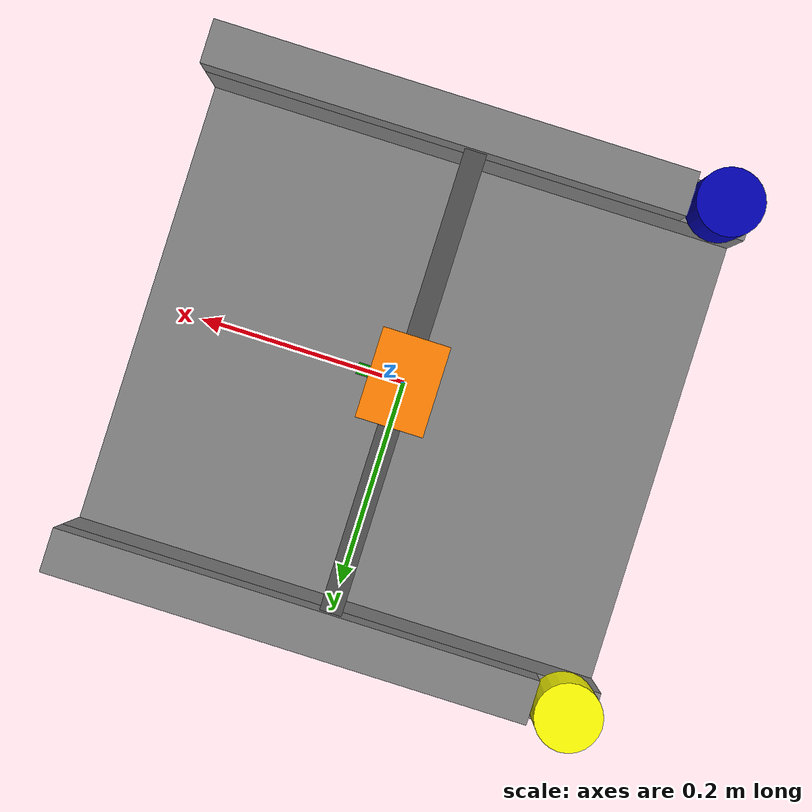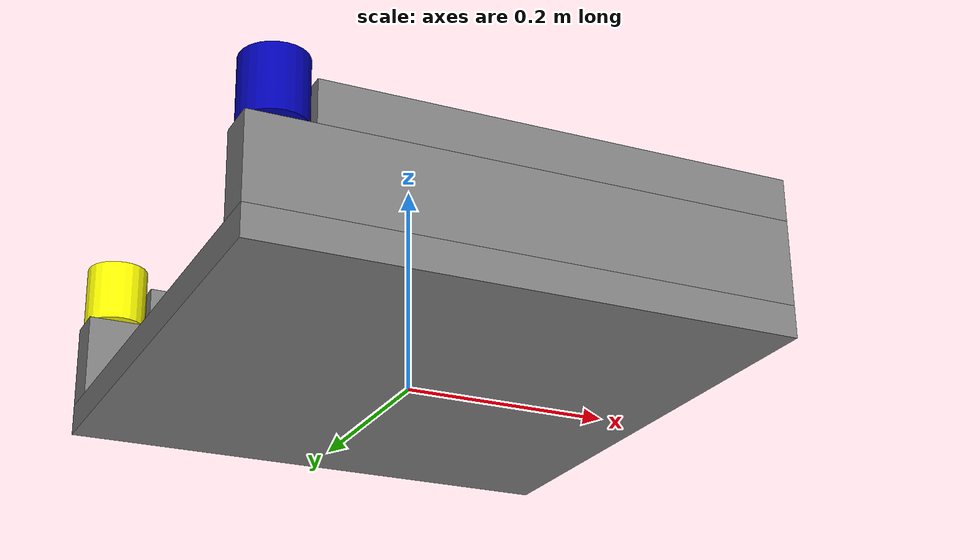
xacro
<?xml version="1.0"?>
<robot name="my_robot" xmlns:xacro="http://www.ros.org/wiki/xacro">

    <xacro:include filename="$(find robot_description)/urdf/properties.xacro"/>
    <xacro:include filename="$(find robot_description)/urdf/macro.xacro"/>

    <link name="base_link">
        <visual>
            <geometry>
                <box size="${base_width} ${base_length} ${base_height}" />
            </geometry>
            <origin xyz="0 0 ${base_height/2.0}" rpy="0 0 0" />
            <material name="grey" />
        </visual>
        <collision>
            <geometry>
                <box size="${base_width} ${base_length} ${base_height}" />
            </geometry>
            <origin xyz="0 0 ${base_height/2.0}" rpy="0 0 0" />
        </collision>
        <xacro:box_inertia m="5.0" w="${base_width}" l="${base_length}" h="${base_height}" xyz="0 0 ${base_height/2.0}" rpy="0 0 0"/>
    </link>

    <link name="motorA_link">
        <visual>
            <geometry>
                <cylinder radius="${motor_radius}" length="${motor_height}"/>
            </geometry>
            <origin xyz="0 0 ${motor_height/2.0}" rpy="0 0 0" />
            <material name="blue" />
        </visual>
        <collision>
            <geometry>
                <cylinder radius="${motor_radius}" length="${motor_height}"/>
            </geometry>
            <origin xyz="0 0 ${motor_height/2.0}" rpy="0 0 0" />
        </collision>
        <xacro:cylinder_inertia m="0.5" r="${motor_radius}" h="${motor_height}" xyz="0 0 ${motor_height/2.0}" rpy="0 0 0"/>
    </link>

    <link name="motorB_link">
        <visual>
            <geometry>
                <cylinder radius="${motor_radius}" length="${motor_height}"/>
            </geometry>
            <origin xyz="0 0 ${motor_height/2.0}" rpy="0 0 0" />
            <material name="yellow" />
        </visual>
        <collision>
            <geometry>
                <cylinder radius="${motor_radius}" length="${motor_height}"/>
            </geometry>
            <origin xyz="0 0 ${motor_height/2.0}" rpy="0 0 0" />
        </collision>
        <xacro:cylinder_inertia m="0.5" r="${motor_radius}" h="${motor_height}" xyz="0 0 ${motor_height/2.0}" rpy="0 0 0"/>
    </link>

    <link name="railA_link">
        <visual>
            <geometry>
                <box size="${base_length-2.0*motor_radius} ${rail_width} ${rail_length}" />
            </geometry>
            <origin xyz="${motor_radius} 0 ${rail_length/2.0}" rpy="0 0 0" />
            <material name="grey" />
        </visual>
        <collision>
            <geometry>
                <box size="${base_length-2.0*motor_radius} ${rail_width} ${rail_length}" />
            </geometry>
            <origin xyz="${motor_radius} 0 ${rail_length/2.0}" rpy="0 0 0" />
        </collision>
        <xacro:box_inertia m="0.5" w="${base_length-2.0*motor_radius}" l="${rail_width}" h="${rail_length}" xyz="${motor_radius} 0 ${rail_length/2.0}" rpy="0 0 0"/>
    </link>

     <link name="railA_supp_link">
        <visual>
            <geometry>
                <box size="${base_length} ${rail_width} ${rail_length*2.0}" />
            </geometry>
            <origin xyz="0 0 ${rail_length}" rpy="0 0 0" />
            <material name="grey" />
        </visual>
        <collision>
            <geometry>
                <box size="${base_length} ${rail_width} ${rail_length*2.0}" />
            </geometry>
            <origin xyz="0 0 ${rail_length}" rpy="0 0 0" />
        </collision>
        <xacro:box_inertia m="1.0" w="${base_length}" l="${rail_width}" h="${rail_length*2.0}" xyz="0 0 ${rail_length}" rpy="0 0 0"/>
    </link>

    <link name="railB_link">
        <visual>
            <geometry>
                <box size="${base_length-2.0*motor_radius} ${rail_width} ${rail_length}" />
            </geometry>
            <origin xyz="${motor_radius} 0 ${rail_length/2.0}" rpy="0 0 0" />
            <material name="grey" />
        </visual>
        <collision>
            <geometry>
                <box size="${base_length-2.0*motor_radius} ${rail_width} ${rail_length}" />
            </geometry>
            <origin xyz="${motor_radius} 0 ${rail_length/2.0}" rpy="0 0 0" />
        </collision>
        <xacro:box_inertia m="0.5" w="${base_length-2.0*motor_radius}" l="${rail_width}" h="${rail_length}" xyz="${motor_radius} 0 ${rail_length/2.0}" rpy="0 0 0"/>
    </link>

    <link name="railB_supp_link">
        <visual>
            <geometry>
                <box size="${base_length} ${rail_width} ${rail_length*2.0}" />
            </geometry>
            <origin xyz="0 0 ${rail_length}" rpy="0 0 0" />
            <material name="grey" />
        </visual>
        <collision>
            <geometry>
                <box size="${base_length} ${rail_width} ${rail_length*2.0}" />
            </geometry>
            <origin xyz="0 0 ${rail_length}" rpy="0 0 0" />
        </collision>
        <xacro:box_inertia m="1.0" w="${base_length}" l="${rail_width}" h="${rail_length*2.0}" xyz="0 0 ${rail_length}" rpy="0 0 0"/>
    </link>

    <link name="main_rail_link">
        <visual>
            <geometry>
                <box size="${main_rail_size} ${base_length-2.0*rail_length} ${main_rail_size}" />
            </geometry>
            <origin xyz="0 ${(base_length-2.0*rail_length)/2.0} 0" rpy="0 0 0" />
            <material name="dark_grey" />
        </visual>
        <collision>
            <geometry>
                <box size="${main_rail_size} ${base_length-2.0*rail_length} ${main_rail_size}" />
            </geometry>
            <origin xyz="0 ${(base_length-2.0*rail_length)/2.0} 0" rpy="0 0 0" />
        </collision>
        <xacro:box_inertia m="0.5" w="${main_rail_size}" l="${base_length-2.0*rail_length}" h="${main_rail_size}" xyz="0 ${(base_length-2.0*rail_length)/2.0} 0" rpy="0 0 0"/>
    </link>

    <link name="carriage_link">
        <visual>
            <geometry>
                <box size="${carriage_length} ${carriage_width} ${carriage_height}" />
            </geometry>
            <origin xyz="0 0 ${carriage_height/2.0}" rpy="0 0 0" />
            <material name="orange" />
        </visual>
        <collision>
            <geometry>
                <box size="${carriage_length} ${carriage_width} ${carriage_height}" />
            </geometry>
            <origin xyz="0 0 ${carriage_height/2.0}" rpy="0 0 0" />
        </collision>
        <xacro:box_inertia m="0.2" w="${carriage_length}" l="${carriage_width}" h="${carriage_height}" xyz="0 0 ${carriage_height/2.0}" rpy="0 0 0"/>
    </link>

    <link name="gripper_link">
        <visual>
            <geometry>
                <box size="${gripper_width} ${gripper_length} ${gripper_height}" />
            </geometry>
            <origin  xyz="${gripper_length / 2.0} 0 0" rpy="0 0 0"/>
            <material name="green" />
        </visual>
        <collision>
            <geometry>
                <box size="${gripper_width} ${gripper_length} ${gripper_height}" />
            </geometry>
            <origin  xyz="${gripper_length / 2.0} 0 0" rpy="0 0 0"/>
        </collision>
        <xacro:box_inertia m="0.05" w="${gripper_width}" l="${gripper_length}" h="${gripper_height}" xyz="${gripper_length / 2.0} 0 0" rpy="0 0 0"/>
    </link>

    <joint name="motorA_joint" type="continuous">
        <parent link="railA_supp_link"/>
        <child link="motorA_link"/>
        <origin xyz="${-base_width/2.0 + motor_radius} 0 ${rail_length*2.0}" rpy="0 0 0" />
        <axis xyz="0 0 1"/>
        <dynamics damping="0.4" friction="0.05"/>
        <limit effort="100" velocity="30"/>
    </joint>

    <joint name="motorB_joint" type="continuous">
        <parent link="railB_supp_link"/>
        <child link="motorB_link"/>
        <origin xyz="${-base_width/2.0 + motor_radius} 0 ${rail_length*2.0}" rpy="0 0 0" />
        <axis xyz="0 0 1"/>
        <dynamics damping="0.4" friction="0.05"/>
        <limit effort="100" velocity="30"/>
    </joint>

    <joint name="base_railA_supp_joint" type="fixed">
        <parent link="base_link"/>
        <child link="railA_supp_link"/>
        <origin xyz="0 -${base_width/2.0-rail_width/2.0} ${base_height}" rpy="0 0 0" />
    </joint>

     <joint name="base_railB_supp_joint" type="fixed">
        <parent link="base_link"/>
        <child link="railB_supp_link"/>
        <origin xyz="0 ${base_width/2.0-rail_width/2.0} ${base_height}" rpy="0 0 0" />
    </joint>

     <joint name="railA_supp_joint" type="fixed">
        <parent link="railA_supp_link"/>
        <child link="railA_link"/>
        <origin xyz="0 0 ${rail_length*2.0}" rpy="0 0 0" />
    </joint>

     <joint name="railB_supp_joint" type="fixed">
        <parent link="railB_supp_link"/>
        <child link="railB_link"/>
        <origin xyz="0 0 ${rail_length*2.0}" rpy="0 0 0" />
    </joint>

     <joint name="x_axis_joint" type="prismatic">
        <parent link="railA_link"/>
        <child link="main_rail_link"/>

        <origin xyz="0 ${rail_length/2.0} ${rail_length/2.0}" rpy="0 0 0" />

        <limit lower="${-(base_length)/2.0 + main_rail_size/2.0 + 2.0*motor_radius}"
               upper="${base_length/2.0 - main_rail_size / 2.0}"
               effort="100" velocity="30"/>
        <axis xyz="1 0 0"/>
    </joint>

    <joint name="y_axis_joint" type="prismatic">
        <parent link="main_rail_link"/>
        <child link="carriage_link"/>

        <origin xyz="0 ${(base_length - 2.0*rail_length) / 2.0} ${main_rail_size / 2.0}" rpy="0 0 0" />

        <limit lower="${-(base_length - 2.0*rail_length - carriage_length) / 2.0 + (0.25 * rail_length)}"
               upper="${(base_length - 2.0*rail_length - carriage_length) / 2.0 - (0.25 * rail_length)}"
               effort="100" velocity="30" />
        <axis xyz="0 1 0"/>
    </joint>

    <joint name="z_axis_joint" type="prismatic">
        <parent link="carriage_link"/>
        <child link="gripper_link"/>
        <origin xyz="${carriage_length / 2.0} 0 0" rpy="0 0 0" />

        <limit lower="${-(base_height)}"
               upper="0"
               effort="100" velocity="100" />
        <axis xyz="0 0 1"/>
    </joint>

    <ros2_control name="GazeboSimSystem" type="system">
        <hardware>
            <plugin>gz_ros2_control/GazeboSimSystem</plugin>
        </hardware>

        <joint name="motorA_joint">
            <command_interface name="position"/>
            <state_interface name="position"/>
            <state_interface name="velocity"/>
        </joint>

        <joint name="motorB_joint">
            <command_interface name="position"/>
            <state_interface name="position"/>
            <state_interface name="velocity"/>
        </joint>

        <joint name="x_axis_joint">
            <command_interface name="position"/>
            <state_interface name="position"/>
            <state_interface name="velocity"/>
        </joint>

        <joint name="y_axis_joint">
            <command_interface name="position"/>
            <state_interface name="position"/>
            <state_interface name="velocity"/>
        </joint>

        <joint name="z_axis_joint">
            <state_interface name="position"/>
            <state_interface name="velocity"/>
        </joint>
    </ros2_control>

    <gazebo>
        <plugin filename="libgz_ros2_control-system.so" name="gz_ros2_control::GazeboSimROS2ControlPlugin">
            <robot_param>robot_description</robot_param>
            <robot_param_node>robot_state_publisher</robot_param_node>
            <parameters>$(find robot_bringup)/config/motor_controllers.yaml</parameters>
            <controller_manager_prefix_node_name>controller_manager</controller_manager_prefix_node_name>
            <hold_joints>true</hold_joints>
            <position_proportional_gain>1.0</position_proportional_gain>
        </plugin>
    </gazebo>

</robot>

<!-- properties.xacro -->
<robot xmlns:xacro="http://www.ros.org/wiki/xacro">

    <xacro:property name="base_width" value="0.5" />
    <xacro:property name="base_length" value="0.5" />
    <xacro:property name="base_height" value="0.03" />

    <xacro:property name="rail_width" value="0.04" />
    <xacro:property name="rail_length" value="0.04" />

    <xacro:property name="main_rail_size" value="0.02" />

    <xacro:property name="motor_radius" value="0.03" />
    <xacro:property name="motor_height" value="0.06" />

    <xacro:property name="carriage_width" value="0.08" />
    <xacro:property name="carriage_length" value="0.06" />
    <xacro:property name="carriage_height" value="0.04" />

    <xacro:property name="gripper_width" value="0.01" />
    <xacro:property name="gripper_length" value="0.01" />
    <xacro:property name="gripper_height" value="0.1" />

    <material name="blue">
        <color rgba="0 0 0.7 1" />
    </material>

    <material name="grey">
        <color rgba="0.5 0.5 0.5 1" />
    </material>

    <material name="dark_grey">
        <color rgba="0.3 0.3 0.3 1" />
    </material>

    <material name="orange">
        <color rgba="1.0 0.5 0 1" />
    </material>

    <material name="yellow">
        <color rgba="1.0 1.0 0 1" />
    </material>

    <material name="green">
        <color rgba="0 0.6 0 1" />
    </material>

</robot>

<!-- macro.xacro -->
<robot xmlns:xacro="http://www.ros.org/wiki/xacro">
     <xacro:macro name="box_inertia" params="m w l h xyz rpy">
        <inertial>
            <origin xyz="${xyz}" rpy="${rpy}"/>
            <mass value="${m}"/>
            <inertia ixx="${(m/12.0) * (h*h + l*l)}" ixy="0.0" ixz="0.0"
                     iyy="${(m/12.0) * (w*w + h*h)}" iyz="0.0"
                     izz="${(m/12.0) * (w*w + l*l)}"/>
        </inertial>
    </xacro:macro>

    <xacro:macro name="cylinder_inertia" params="m r h xyz rpy">
        <inertial>
            <origin xyz="${xyz}" rpy="${rpy}"/>
            <mass value="${m}"/>
            <inertia ixx="${(m/12.0) * (3*r*r + h*h)}" ixy="0.0" ixz="0.0"
                     iyy="${(m/12.0) * (3*r*r + h*h)}" iyz="0.0"
                     izz="${(m/2.0) * (r*r)}"/>
        </inertial>
    </xacro:macro>

</robot>
